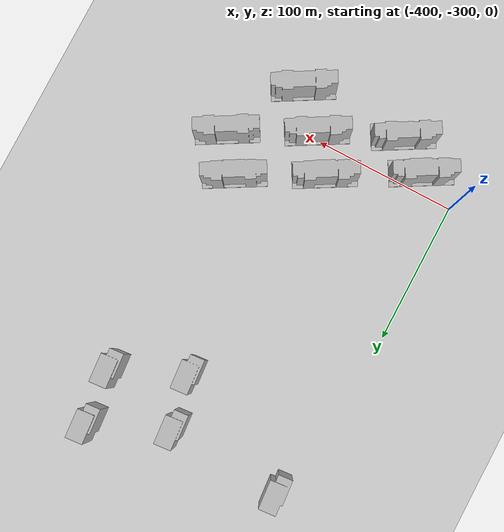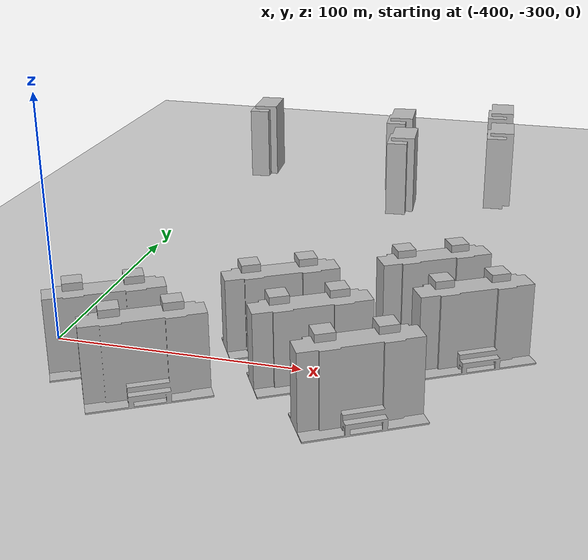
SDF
<sdf version="1.7">
 <world name="default">
  <model name="ground_plane">
   <static>1</static>
   <link name="link">
    <collision name="collision">
     <geometry><plane><normal>0 0 1</normal><size>100 100</size></plane></geometry>
     <surface><friction><ode><mu>100</mu><mu2>50</mu2></ode></friction></surface>
    </collision>
    <visual name="visual">
     <cast_shadows>0</cast_shadows>
     <geometry><plane><normal>0 0 1</normal><size>100 100</size></plane></geometry>
     <material>
      <script><uri>file://media/materials/scripts/gazebo.material</uri><name>Gazebo/Grey</name></script>
     </material>
    </visual>
   </link>
  </model>
  <model name="apartment1_4_clone_14_clone">
   <static>1</static>
   <link name="link_0">
    <inertial>
     <mass>1</mass>
     <inertia>
      <ixx>0.166667</ixx>
      <ixy>0</ixy>
      <ixz>0</ixz>
      <iyy>0.166667</iyy>
      <iyz>0</iyz>
      <izz>0.166667</izz>
     </inertia>
    </inertial>
    <pose>1e-06 -0 0 0 -0 0</pose>
    <visual name="visual">
     <geometry>
      <mesh><uri>model://apartment1/scripts/apartment1.dae</uri><scale>0.5 0.2 0.33</scale></mesh>
     </geometry>
     <material>
      <lighting>1</lighting>
      <script><uri>model://apartment1/scripts/apartment1.jpg</uri><name>__default__</name></script>
      <shader type="pixel"/>
     </material>
    </visual>
    <collision name="collision">
     <geometry>
      <mesh><uri>model://apartment1/scripts/apartment1.dae</uri><scale>0.5 0.2 0.33</scale></mesh>
     </geometry>
     <surface>
      <friction>
       <ode><mu>1</mu><mu2>1</mu2><fdir1>0 0 0</fdir1><slip1>0</slip1><slip2>0</slip2></ode>
       <torsional>
        <coefficient>1</coefficient>
        <patch_radius>0</patch_radius>
        <surface_radius>0</surface_radius>
        <use_patch_radius>1</use_patch_radius>
        <ode><slip>0</slip></ode>
       </torsional>
      </friction>
      <bounce><restitution_coefficient>0</restitution_coefficient><threshold>1e+06</threshold></bounce>
      <contact>
       <collide_without_contact>0</collide_without_contact>
       <collide_without_contact_bitmask>1</collide_without_contact_bitmask>
       <collide_bitmask>1</collide_bitmask>
       <ode>
        <soft_cfm>0</soft_cfm>
        <soft_erp>0.2</soft_erp>
        <kp>1e+13</kp>
        <kd>1</kd>
        <max_vel>0.01</max_vel>
        <min_depth>0</min_depth>
       </ode>
       <bullet>
        <split_impulse>1</split_impulse>
        <split_impulse_penetration_threshold>-0.01</split_impulse_penetration_threshold>
        <soft_cfm>0</soft_cfm>
        <soft_erp>0.2</soft_erp>
        <kp>1e+13</kp>
        <kd>1</kd>
       </bullet>
      </contact>
     </surface>
    </collision>
   </link>
   <static>0</static>
   <pose>-250.809 -56.5507 0 0 -0 1.65176</pose>
  </model>
  <model name="apartment1_4_clone_14_clone_clone">
   <static>1</static>
   <link name="link_0">
    <inertial>
     <mass>1</mass>
     <inertia>
      <ixx>0.166667</ixx>
      <ixy>0</ixy>
      <ixz>0</ixz>
      <iyy>0.166667</iyy>
      <iyz>0</iyz>
      <izz>0.166667</izz>
     </inertia>
    </inertial>
    <pose>1e-06 -0 0 0 -0 0</pose>
    <visual name="visual">
     <geometry>
      <mesh><uri>model://apartment1/scripts/apartment1.dae</uri><scale>0.5 0.2 0.33</scale></mesh>
     </geometry>
     <material>
      <lighting>1</lighting>
      <script><uri>model://apartment1/scripts/apartment1.jpg</uri><name>__default__</name></script>
      <shader type="pixel"/>
     </material>
    </visual>
    <collision name="collision">
     <geometry>
      <mesh><uri>model://apartment1/scripts/apartment1.dae</uri><scale>0.5 0.2 0.33</scale></mesh>
     </geometry>
     <surface>
      <friction>
       <ode><mu>1</mu><mu2>1</mu2><fdir1>0 0 0</fdir1><slip1>0</slip1><slip2>0</slip2></ode>
       <torsional>
        <coefficient>1</coefficient>
        <patch_radius>0</patch_radius>
        <surface_radius>0</surface_radius>
        <use_patch_radius>1</use_patch_radius>
        <ode><slip>0</slip></ode>
       </torsional>
      </friction>
      <bounce><restitution_coefficient>0</restitution_coefficient><threshold>1e+06</threshold></bounce>
      <contact>
       <collide_without_contact>0</collide_without_contact>
       <collide_without_contact_bitmask>1</collide_without_contact_bitmask>
       <collide_bitmask>1</collide_bitmask>
       <ode>
        <soft_cfm>0</soft_cfm>
        <soft_erp>0.2</soft_erp>
        <kp>1e+13</kp>
        <kd>1</kd>
        <max_vel>0.01</max_vel>
        <min_depth>0</min_depth>
       </ode>
       <bullet>
        <split_impulse>1</split_impulse>
        <split_impulse_penetration_threshold>-0.01</split_impulse_penetration_threshold>
        <soft_cfm>0</soft_cfm>
        <soft_erp>0.2</soft_erp>
        <kp>1e+13</kp>
        <kd>1</kd>
       </bullet>
      </contact>
     </surface>
    </collision>
   </link>
   <static>0</static>
   <pose>-247.298 -94.9892 0 0 -0 1.65176</pose>
  </model>
  <model name="apartment1_4_clone_14_clone_clone_clone">
   <static>1</static>
   <link name="link_0">
    <inertial>
     <mass>1</mass>
     <inertia>
      <ixx>0.166667</ixx>
      <ixy>0</ixy>
      <ixz>0</ixz>
      <iyy>0.166667</iyy>
      <iyz>0</iyz>
      <izz>0.166667</izz>
     </inertia>
    </inertial>
    <pose>1e-06 -0 0 0 -0 0</pose>
    <visual name="visual">
     <geometry>
      <mesh><uri>model://apartment1/scripts/apartment1.dae</uri><scale>0.5 0.2 0.33</scale></mesh>
     </geometry>
     <material>
      <lighting>1</lighting>
      <script><uri>model://apartment1/scripts/apartment1.jpg</uri><name>__default__</name></script>
      <shader type="pixel"/>
     </material>
    </visual>
    <collision name="collision">
     <geometry>
      <mesh><uri>model://apartment1/scripts/apartment1.dae</uri><scale>0.5 0.2 0.33</scale></mesh>
     </geometry>
     <surface>
      <friction>
       <ode><mu>1</mu><mu2>1</mu2><fdir1>0 0 0</fdir1><slip1>0</slip1><slip2>0</slip2></ode>
       <torsional>
        <coefficient>1</coefficient>
        <patch_radius>0</patch_radius>
        <surface_radius>0</surface_radius>
        <use_patch_radius>1</use_patch_radius>
        <ode><slip>0</slip></ode>
       </torsional>
      </friction>
      <bounce><restitution_coefficient>0</restitution_coefficient><threshold>1e+06</threshold></bounce>
      <contact>
       <collide_without_contact>0</collide_without_contact>
       <collide_without_contact_bitmask>1</collide_without_contact_bitmask>
       <collide_bitmask>1</collide_bitmask>
       <ode>
        <soft_cfm>0</soft_cfm>
        <soft_erp>0.2</soft_erp>
        <kp>1e+13</kp>
        <kd>1</kd>
        <max_vel>0.01</max_vel>
        <min_depth>0</min_depth>
       </ode>
       <bullet>
        <split_impulse>1</split_impulse>
        <split_impulse_penetration_threshold>-0.01</split_impulse_penetration_threshold>
        <soft_cfm>0</soft_cfm>
        <soft_erp>0.2</soft_erp>
        <kp>1e+13</kp>
        <kd>1</kd>
       </bullet>
      </contact>
     </surface>
    </collision>
   </link>
   <static>0</static>
   <pose>-295.554 -115.766 0 0 -0 1.65176</pose>
  </model>
  <model name="apartment1_4_clone_14_clone_clone_clone_0">
   <static>1</static>
   <link name="link_0">
    <inertial>
     <mass>1</mass>
     <inertia>
      <ixx>0.166667</ixx>
      <ixy>0</ixy>
      <ixz>0</ixz>
      <iyy>0.166667</iyy>
      <iyz>0</iyz>
      <izz>0.166667</izz>
     </inertia>
    </inertial>
    <pose>1e-06 -0 0 0 -0 0</pose>
    <visual name="visual">
     <geometry>
      <mesh><uri>model://apartment1/scripts/apartment1.dae</uri><scale>0.5 0.2 0.33</scale></mesh>
     </geometry>
     <material>
      <lighting>1</lighting>
      <script><uri>model://apartment1/scripts/apartment1.jpg</uri><name>__default__</name></script>
      <shader type="pixel"/>
     </material>
    </visual>
    <collision name="collision">
     <geometry>
      <mesh><uri>model://apartment1/scripts/apartment1.dae</uri><scale>0.5 0.2 0.33</scale></mesh>
     </geometry>
     <surface>
      <friction>
       <ode><mu>1</mu><mu2>1</mu2><fdir1>0 0 0</fdir1><slip1>0</slip1><slip2>0</slip2></ode>
       <torsional>
        <coefficient>1</coefficient>
        <patch_radius>0</patch_radius>
        <surface_radius>0</surface_radius>
        <use_patch_radius>1</use_patch_radius>
        <ode><slip>0</slip></ode>
       </torsional>
      </friction>
      <bounce><restitution_coefficient>0</restitution_coefficient><threshold>1e+06</threshold></bounce>
      <contact>
       <collide_without_contact>0</collide_without_contact>
       <collide_without_contact_bitmask>1</collide_without_contact_bitmask>
       <collide_bitmask>1</collide_bitmask>
       <ode>
        <soft_cfm>0</soft_cfm>
        <soft_erp>0.2</soft_erp>
        <kp>1e+13</kp>
        <kd>1</kd>
        <max_vel>0.01</max_vel>
        <min_depth>0</min_depth>
       </ode>
       <bullet>
        <split_impulse>1</split_impulse>
        <split_impulse_penetration_threshold>-0.01</split_impulse_penetration_threshold>
        <soft_cfm>0</soft_cfm>
        <soft_erp>0.2</soft_erp>
        <kp>1e+13</kp>
        <kd>1</kd>
       </bullet>
      </contact>
     </surface>
    </collision>
   </link>
   <static>0</static>
   <pose>-302.957 -79.446 0 0 -0 1.65176</pose>
  </model>
  <model name="apartment1_4_clone_14_clone_clone_clone_7">
   <static>1</static>
   <link name="link_0">
    <inertial>
     <mass>1</mass>
     <inertia>
      <ixx>0.166667</ixx>
      <ixy>0</ixy>
      <ixz>0</ixz>
      <iyy>0.166667</iyy>
      <iyz>0</iyz>
      <izz>0.166667</izz>
     </inertia>
    </inertial>
    <pose>1e-06 -0 0 0 -0 0</pose>
    <visual name="visual">
     <geometry>
      <mesh><uri>model://apartment1/scripts/apartment1.dae</uri><scale>0.5 0.2 0.33</scale></mesh>
     </geometry>
     <material>
      <lighting>1</lighting>
      <script><uri>model://apartment1/scripts/apartment1.jpg</uri><name>__default__</name></script>
      <shader type="pixel"/>
     </material>
    </visual>
    <collision name="collision">
     <geometry>
      <mesh><uri>model://apartment1/scripts/apartment1.dae</uri><scale>0.5 0.2 0.33</scale></mesh>
     </geometry>
     <surface>
      <friction>
       <ode><mu>1</mu><mu2>1</mu2><fdir1>0 0 0</fdir1><slip1>0</slip1><slip2>0</slip2></ode>
       <torsional>
        <coefficient>1</coefficient>
        <patch_radius>0</patch_radius>
        <surface_radius>0</surface_radius>
        <use_patch_radius>1</use_patch_radius>
        <ode><slip>0</slip></ode>
       </torsional>
      </friction>
      <bounce><restitution_coefficient>0</restitution_coefficient><threshold>1e+06</threshold></bounce>
      <contact>
       <collide_without_contact>0</collide_without_contact>
       <collide_without_contact_bitmask>1</collide_without_contact_bitmask>
       <collide_bitmask>1</collide_bitmask>
       <ode>
        <soft_cfm>0</soft_cfm>
        <soft_erp>0.2</soft_erp>
        <kp>1e+13</kp>
        <kd>1</kd>
        <max_vel>0.01</max_vel>
        <min_depth>0</min_depth>
       </ode>
       <bullet>
        <split_impulse>1</split_impulse>
        <split_impulse_penetration_threshold>-0.01</split_impulse_penetration_threshold>
        <soft_cfm>0</soft_cfm>
        <soft_erp>0.2</soft_erp>
        <kp>1e+13</kp>
        <kd>1</kd>
       </bullet>
      </contact>
     </surface>
    </collision>
   </link>
   <static>0</static>
   <pose>-381.788 -74.0255 0 0 -0 1.65176</pose>
  </model>
  <model name="apartment0_0_clone_clone">
   <static>1</static>
   <link name="link_0">
    <inertial>
     <mass>1</mass>
     <inertia>
      <ixx>0.166667</ixx>
      <ixy>0</ixy>
      <ixz>0</ixz>
      <iyy>0.166667</iyy>
      <iyz>0</iyz>
      <izz>0.166667</izz>
     </inertia>
    </inertial>
    <pose>0.000226 2e-06 0 0 -0 0</pose>
    <visual name="visual">
     <geometry>
      <mesh><uri>model://apartment0/scripts/apartment.dae</uri><scale>0.6 0.3 0.2</scale></mesh>
     </geometry>
     <material>
      <lighting>1</lighting>
      <script><uri>model://apartment0/scripts/building.jpg</uri><name>__default__</name></script>
      <shader type="pixel"/>
     </material>
    </visual>
    <collision name="collision">
     <geometry>
      <mesh><uri>model://apartment0/scripts/apartment.dae</uri><scale>0.6 0.3 0.2</scale></mesh>
     </geometry>
     <surface>
      <friction>
       <ode><mu>1</mu><mu2>1</mu2><fdir1>0 0 0</fdir1><slip1>0</slip1><slip2>0</slip2></ode>
       <torsional>
        <coefficient>1</coefficient>
        <patch_radius>0</patch_radius>
        <surface_radius>0</surface_radius>
        <use_patch_radius>1</use_patch_radius>
        <ode><slip>0</slip></ode>
       </torsional>
      </friction>
      <bounce><restitution_coefficient>0</restitution_coefficient><threshold>1e+06</threshold></bounce>
      <contact>
       <collide_without_contact>0</collide_without_contact>
       <collide_without_contact_bitmask>1</collide_without_contact_bitmask>
       <collide_bitmask>1</collide_bitmask>
       <ode>
        <soft_cfm>0</soft_cfm>
        <soft_erp>0.2</soft_erp>
        <kp>1e+13</kp>
        <kd>1</kd>
        <max_vel>0.01</max_vel>
        <min_depth>0</min_depth>
       </ode>
       <bullet>
        <split_impulse>1</split_impulse>
        <split_impulse_penetration_threshold>-0.01</split_impulse_penetration_threshold>
        <soft_cfm>0</soft_cfm>
        <soft_erp>0.2</soft_erp>
        <kp>1e+13</kp>
        <kd>1</kd>
       </bullet>
      </contact>
     </surface>
    </collision>
   </link>
   <static>0</static>
   <pose>-371.86 -312.617 1.01682 0 -0 0.518792</pose>
  </model>
  <model name="apartment0_0_clone_clone_0">
   <static>1</static>
   <link name="link_0">
    <inertial>
     <mass>1</mass>
     <inertia>
      <ixx>0.166667</ixx>
      <ixy>0</ixy>
      <ixz>0</ixz>
      <iyy>0.166667</iyy>
      <iyz>0</iyz>
      <izz>0.166667</izz>
     </inertia>
    </inertial>
    <pose>0.000226 2e-06 0 0 -0 0</pose>
    <visual name="visual">
     <geometry>
      <mesh><uri>model://apartment0/scripts/apartment.dae</uri><scale>0.6 0.3 0.2</scale></mesh>
     </geometry>
     <material>
      <lighting>1</lighting>
      <script><uri>model://apartment0/scripts/building.jpg</uri><name>__default__</name></script>
      <shader type="pixel"/>
     </material>
    </visual>
    <collision name="collision">
     <geometry>
      <mesh><uri>model://apartment0/scripts/apartment.dae</uri><scale>0.6 0.3 0.2</scale></mesh>
     </geometry>
     <surface>
      <friction>
       <ode><mu>1</mu><mu2>1</mu2><fdir1>0 0 0</fdir1><slip1>0</slip1><slip2>0</slip2></ode>
       <torsional>
        <coefficient>1</coefficient>
        <patch_radius>0</patch_radius>
        <surface_radius>0</surface_radius>
        <use_patch_radius>1</use_patch_radius>
        <ode><slip>0</slip></ode>
       </torsional>
      </friction>
      <bounce><restitution_coefficient>0</restitution_coefficient><threshold>1e+06</threshold></bounce>
      <contact>
       <collide_without_contact>0</collide_without_contact>
       <collide_without_contact_bitmask>1</collide_without_contact_bitmask>
       <collide_bitmask>1</collide_bitmask>
       <ode>
        <soft_cfm>0</soft_cfm>
        <soft_erp>0.2</soft_erp>
        <kp>1e+13</kp>
        <kd>1</kd>
        <max_vel>0.01</max_vel>
        <min_depth>0</min_depth>
       </ode>
       <bullet>
        <split_impulse>1</split_impulse>
        <split_impulse_penetration_threshold>-0.01</split_impulse_penetration_threshold>
        <soft_cfm>0</soft_cfm>
        <soft_erp>0.2</soft_erp>
        <kp>1e+13</kp>
        <kd>1</kd>
       </bullet>
      </contact>
     </surface>
    </collision>
   </link>
   <static>0</static>
   <pose>-313.524 -280.676 1.01682 0 -0 0.518792</pose>
  </model>
  <model name="apartment0_0_clone_clone_1">
   <static>1</static>
   <link name="link_0">
    <inertial>
     <mass>1</mass>
     <inertia>
      <ixx>0.166667</ixx>
      <ixy>0</ixy>
      <ixz>0</ixz>
      <iyy>0.166667</iyy>
      <iyz>0</iyz>
      <izz>0.166667</izz>
     </inertia>
    </inertial>
    <pose>0.000226 2e-06 0 0 -0 0</pose>
    <visual name="visual">
     <geometry>
      <mesh><uri>model://apartment0/scripts/apartment.dae</uri><scale>0.6 0.3 0.2</scale></mesh>
     </geometry>
     <material>
      <lighting>1</lighting>
      <script><uri>model://apartment0/scripts/building.jpg</uri><name>__default__</name></script>
      <shader type="pixel"/>
     </material>
    </visual>
    <collision name="collision">
     <geometry>
      <mesh><uri>model://apartment0/scripts/apartment.dae</uri><scale>0.6 0.3 0.2</scale></mesh>
     </geometry>
     <surface>
      <friction>
       <ode><mu>1</mu><mu2>1</mu2><fdir1>0 0 0</fdir1><slip1>0</slip1><slip2>0</slip2></ode>
       <torsional>
        <coefficient>1</coefficient>
        <patch_radius>0</patch_radius>
        <surface_radius>0</surface_radius>
        <use_patch_radius>1</use_patch_radius>
        <ode><slip>0</slip></ode>
       </torsional>
      </friction>
      <bounce><restitution_coefficient>0</restitution_coefficient><threshold>1e+06</threshold></bounce>
      <contact>
       <collide_without_contact>0</collide_without_contact>
       <collide_without_contact_bitmask>1</collide_without_contact_bitmask>
       <collide_bitmask>1</collide_bitmask>
       <ode>
        <soft_cfm>0</soft_cfm>
        <soft_erp>0.2</soft_erp>
        <kp>1e+13</kp>
        <kd>1</kd>
        <max_vel>0.01</max_vel>
        <min_depth>0</min_depth>
       </ode>
       <bullet>
        <split_impulse>1</split_impulse>
        <split_impulse_penetration_threshold>-0.01</split_impulse_penetration_threshold>
        <soft_cfm>0</soft_cfm>
        <soft_erp>0.2</soft_erp>
        <kp>1e+13</kp>
        <kd>1</kd>
       </bullet>
      </contact>
     </surface>
    </collision>
   </link>
   <static>0</static>
   <pose>-258.574 -251.926 1.01682 0 -0 0.518792</pose>
  </model>
  <model name="apartment0_0_clone_clone_2">
   <static>1</static>
   <link name="link_0">
    <inertial>
     <mass>1</mass>
     <inertia>
      <ixx>0.166667</ixx>
      <ixy>0</ixy>
      <ixz>0</ixz>
      <iyy>0.166667</iyy>
      <iyz>0</iyz>
      <izz>0.166667</izz>
     </inertia>
    </inertial>
    <pose>0.000226 2e-06 0 0 -0 0</pose>
    <visual name="visual">
     <geometry>
      <mesh><uri>model://apartment0/scripts/apartment.dae</uri><scale>0.6 0.3 0.2</scale></mesh>
     </geometry>
     <material>
      <lighting>1</lighting>
      <script><uri>model://apartment0/scripts/building.jpg</uri><name>__default__</name></script>
      <shader type="pixel"/>
     </material>
    </visual>
    <collision name="collision">
     <geometry>
      <mesh><uri>model://apartment0/scripts/apartment.dae</uri><scale>0.6 0.3 0.2</scale></mesh>
     </geometry>
     <surface>
      <friction>
       <ode><mu>1</mu><mu2>1</mu2><fdir1>0 0 0</fdir1><slip1>0</slip1><slip2>0</slip2></ode>
       <torsional>
        <coefficient>1</coefficient>
        <patch_radius>0</patch_radius>
        <surface_radius>0</surface_radius>
        <use_patch_radius>1</use_patch_radius>
        <ode><slip>0</slip></ode>
       </torsional>
      </friction>
      <bounce><restitution_coefficient>0</restitution_coefficient><threshold>1e+06</threshold></bounce>
      <contact>
       <collide_without_contact>0</collide_without_contact>
       <collide_without_contact_bitmask>1</collide_without_contact_bitmask>
       <collide_bitmask>1</collide_bitmask>
       <ode>
        <soft_cfm>0</soft_cfm>
        <soft_erp>0.2</soft_erp>
        <kp>1e+13</kp>
        <kd>1</kd>
        <max_vel>0.01</max_vel>
        <min_depth>0</min_depth>
       </ode>
       <bullet>
        <split_impulse>1</split_impulse>
        <split_impulse_penetration_threshold>-0.01</split_impulse_penetration_threshold>
        <soft_cfm>0</soft_cfm>
        <soft_erp>0.2</soft_erp>
        <kp>1e+13</kp>
        <kd>1</kd>
       </bullet>
      </contact>
     </surface>
    </collision>
   </link>
   <static>0</static>
   <pose>-349.4 -329.47 1.01682 0 -0 0.518792</pose>
  </model>
  <model name="apartment0_0_clone_clone_3">
   <static>1</static>
   <link name="link_0">
    <inertial>
     <mass>1</mass>
     <inertia>
      <ixx>0.166667</ixx>
      <ixy>0</ixy>
      <ixz>0</ixz>
      <iyy>0.166667</iyy>
      <iyz>0</iyz>
      <izz>0.166667</izz>
     </inertia>
    </inertial>
    <pose>0.000226 2e-06 0 0 -0 0</pose>
    <visual name="visual">
     <geometry>
      <mesh><uri>model://apartment0/scripts/apartment.dae</uri><scale>0.6 0.3 0.2</scale></mesh>
     </geometry>
     <material>
      <lighting>1</lighting>
      <script><uri>model://apartment0/scripts/building.jpg</uri><name>__default__</name></script>
      <shader type="pixel"/>
     </material>
    </visual>
    <collision name="collision">
     <geometry>
      <mesh><uri>model://apartment0/scripts/apartment.dae</uri><scale>0.6 0.3 0.2</scale></mesh>
     </geometry>
     <surface>
      <friction>
       <ode><mu>1</mu><mu2>1</mu2><fdir1>0 0 0</fdir1><slip1>0</slip1><slip2>0</slip2></ode>
       <torsional>
        <coefficient>1</coefficient>
        <patch_radius>0</patch_radius>
        <surface_radius>0</surface_radius>
        <use_patch_radius>1</use_patch_radius>
        <ode><slip>0</slip></ode>
       </torsional>
      </friction>
      <bounce><restitution_coefficient>0</restitution_coefficient><threshold>1e+06</threshold></bounce>
      <contact>
       <collide_without_contact>0</collide_without_contact>
       <collide_without_contact_bitmask>1</collide_without_contact_bitmask>
       <collide_bitmask>1</collide_bitmask>
       <ode>
        <soft_cfm>0</soft_cfm>
        <soft_erp>0.2</soft_erp>
        <kp>1e+13</kp>
        <kd>1</kd>
        <max_vel>0.01</max_vel>
        <min_depth>0</min_depth>
       </ode>
       <bullet>
        <split_impulse>1</split_impulse>
        <split_impulse_penetration_threshold>-0.01</split_impulse_penetration_threshold>
        <soft_cfm>0</soft_cfm>
        <soft_erp>0.2</soft_erp>
        <kp>1e+13</kp>
        <kd>1</kd>
       </bullet>
      </contact>
     </surface>
    </collision>
   </link>
   <static>0</static>
   <pose>-295.074 -304.647 1.01682 0 -0 0.518792</pose>
  </model>
  <model name="apartment0_0_clone_clone_4">
   <static>1</static>
   <link name="link_0">
    <inertial>
     <mass>1</mass>
     <inertia>
      <ixx>0.166667</ixx>
      <ixy>0</ixy>
      <ixz>0</ixz>
      <iyy>0.166667</iyy>
      <iyz>0</iyz>
      <izz>0.166667</izz>
     </inertia>
    </inertial>
    <pose>0.000226 2e-06 0 0 -0 0</pose>
    <visual name="visual">
     <geometry>
      <mesh><uri>model://apartment0/scripts/apartment.dae</uri><scale>0.6 0.3 0.2</scale></mesh>
     </geometry>
     <material>
      <lighting>1</lighting>
      <script><uri>model://apartment0/scripts/building.jpg</uri><name>__default__</name></script>
      <shader type="pixel"/>
     </material>
    </visual>
    <collision name="collision">
     <geometry>
      <mesh><uri>model://apartment0/scripts/apartment.dae</uri><scale>0.6 0.3 0.2</scale></mesh>
     </geometry>
     <surface>
      <friction>
       <ode><mu>1</mu><mu2>1</mu2><fdir1>0 0 0</fdir1><slip1>0</slip1><slip2>0</slip2></ode>
       <torsional>
        <coefficient>1</coefficient>
        <patch_radius>0</patch_radius>
        <surface_radius>0</surface_radius>
        <use_patch_radius>1</use_patch_radius>
        <ode><slip>0</slip></ode>
       </torsional>
      </friction>
      <bounce><restitution_coefficient>0</restitution_coefficient><threshold>1e+06</threshold></bounce>
      <contact>
       <collide_without_contact>0</collide_without_contact>
       <collide_without_contact_bitmask>1</collide_without_contact_bitmask>
       <collide_bitmask>1</collide_bitmask>
       <ode>
        <soft_cfm>0</soft_cfm>
        <soft_erp>0.2</soft_erp>
        <kp>1e+13</kp>
        <kd>1</kd>
        <max_vel>0.01</max_vel>
        <min_depth>0</min_depth>
       </ode>
       <bullet>
        <split_impulse>1</split_impulse>
        <split_impulse_penetration_threshold>-0.01</split_impulse_penetration_threshold>
        <soft_cfm>0</soft_cfm>
        <soft_erp>0.2</soft_erp>
        <kp>1e+13</kp>
        <kd>1</kd>
       </bullet>
      </contact>
     </surface>
    </collision>
   </link>
   <static>0</static>
   <pose>-239.917 -276.668 1.01682 0 -0 0.518792</pose>
  </model>
  <model name="apartment0_0_clone_clone_6">
   <static>1</static>
   <link name="link_0">
    <inertial>
     <mass>1</mass>
     <inertia>
      <ixx>0.166667</ixx>
      <ixy>0</ixy>
      <ixz>0</ixz>
      <iyy>0.166667</iyy>
      <iyz>0</iyz>
      <izz>0.166667</izz>
     </inertia>
    </inertial>
    <pose>0.000226 2e-06 0 0 -0 0</pose>
    <visual name="visual">
     <geometry>
      <mesh><uri>model://apartment0/scripts/apartment.dae</uri><scale>0.6 0.3 0.2</scale></mesh>
     </geometry>
     <material>
      <lighting>1</lighting>
      <script><uri>model://apartment0/scripts/building.jpg</uri><name>__default__</name></script>
      <shader type="pixel"/>
     </material>
    </visual>
    <collision name="collision">
     <geometry>
      <mesh><uri>model://apartment0/scripts/apartment.dae</uri><scale>0.6 0.3 0.2</scale></mesh>
     </geometry>
     <surface>
      <friction>
       <ode><mu>1</mu><mu2>1</mu2><fdir1>0 0 0</fdir1><slip1>0</slip1><slip2>0</slip2></ode>
       <torsional>
        <coefficient>1</coefficient>
        <patch_radius>0</patch_radius>
        <surface_radius>0</surface_radius>
        <use_patch_radius>1</use_patch_radius>
        <ode><slip>0</slip></ode>
       </torsional>
      </friction>
      <bounce><restitution_coefficient>0</restitution_coefficient><threshold>1e+06</threshold></bounce>
      <contact>
       <collide_without_contact>0</collide_without_contact>
       <collide_without_contact_bitmask>1</collide_without_contact_bitmask>
       <collide_bitmask>1</collide_bitmask>
       <ode>
        <soft_cfm>0</soft_cfm>
        <soft_erp>0.2</soft_erp>
        <kp>1e+13</kp>
        <kd>1</kd>
        <max_vel>0.01</max_vel>
        <min_depth>0</min_depth>
       </ode>
       <bullet>
        <split_impulse>1</split_impulse>
        <split_impulse_penetration_threshold>-0.01</split_impulse_penetration_threshold>
        <soft_cfm>0</soft_cfm>
        <soft_erp>0.2</soft_erp>
        <kp>1e+13</kp>
        <kd>1</kd>
       </bullet>
      </contact>
     </surface>
    </collision>
   </link>
   <static>0</static>
   <pose>-272.231 -327.921 1.01682 0 -0 0.518792</pose>
  </model>
 </world>
</sdf>
